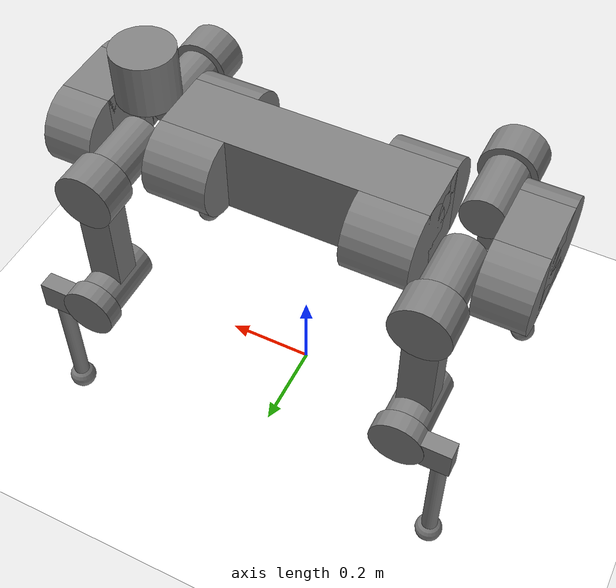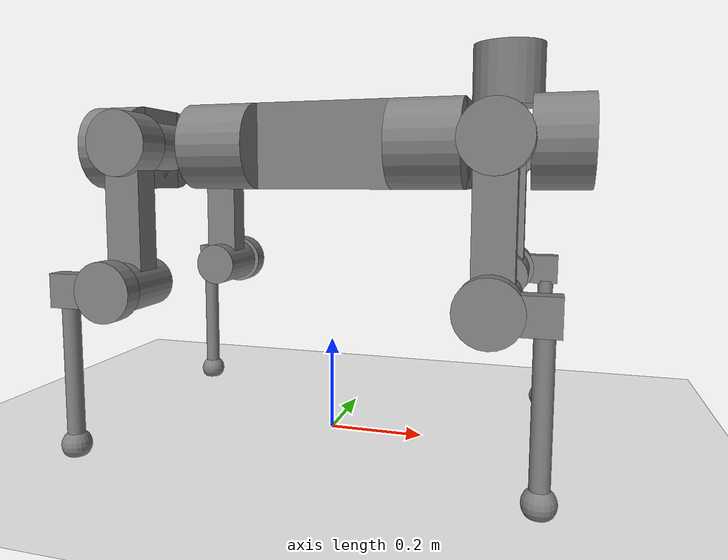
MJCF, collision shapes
<mujoco model="velocity_anymal_c">
  <option timestep="0.005" iterations="10" ls_iterations="20" solver="Newton" integrator="implicitfast"/>
  <compiler angle="radian" meshdir="assets" texturedir="assets" autolimits="true"/>

  <default>
    <material specular="0" shininess="0.25"/>
    <default class="anymal_c">
      <position kp="100" ctrlrange="-6.28 6.28" forcerange="-80 80"/>
      <joint damping="1" frictionloss="0.1"/>

      <default class="visual">
        <geom type="mesh" contype="0" conaffinity="0" group="2"/>
        <default class="visual_zflip">
          <geom quat="0 0 0 1"/>
        </default>
      </default>
      <default class="collision">
        <geom group="1" type="cylinder" contype="0" conaffinity="0"/>
        <default class="foot_collision">
          <geom type="sphere" size="0.03" pos="0 0 0.02325" priority="1" friction="0.6" conaffinity="1" contype="1"/>
        </default>
      </default>
    </default>

  </default>

  <worldbody>
    <geom name="floor" size="0 0 0.01" type="plane" material="groundplane" contype="1" conaffinity="1" priority="1" friction="0.6" condim="3"/>

    <body name="base" pos="0 0 0.62" quat="0 0 0 1" childclass="anymal_c">
      <freejoint name="root"/>
      <site name="imu" size="0.01" pos="0 0 0"/>
      <inertial mass="19.2035" pos="0.0025 0 0.0502071" quat="0.5 0.5 0.5 0.5" diaginertia="0.639559 0.624031 0.217374"/>
      <geom mesh="base_0" material="green" class="visual"/>
      <geom mesh="base_1" material="yellow" class="visual"/>
      <geom mesh="base_2" material="red" class="visual"/>
      <geom mesh="base_3" material="black_plastic" class="visual"/>
      <geom mesh="base_4" material="lwl" class="visual"/>
      <geom mesh="base_5" material="base" class="visual"/>
      <geom class="collision" size="0.29 0.07 0.09" type="box"/>
      <geom class="collision" size="0.09 0.0725" pos="0.2175 0.07 0" quat="1 0 1 0"/>
      <geom class="collision" size="0.09 0.0725" pos="-0.2175 0.07 0" quat="1 0 1 0"/>
      <geom class="collision" size="0.09 0.0725" pos="0.2175 -0.07 0" quat="1 0 1 0"/>
      <geom class="collision" size="0.09 0.0725" pos="-0.2175 -0.07 0" quat="1 0 1 0"/>
      <geom material="top_shell" mesh="top_shell" class="visual"/>
      <geom material="bottom_shell" mesh="bottom_shell" class="visual"/>
      <geom material="remote" mesh="remote" class="visual"/>
      <geom material="handle" mesh="handle" class="visual"/>
      <geom pos="0.4145 0 0" material="face" mesh="face" class="visual"/>
      <geom class="collision" size="0.055 0.07 0.09" pos="0.4695 0 0" type="box"/>
      <geom class="collision" size="0.09 0.055" pos="0.4695 0.07 0" quat="1 0 1 0"/>
      <geom class="collision" size="0.09 0.055" pos="0.4695 -0.07 0" quat="1 0 1 0"/>
      <geom pos="0.46165 0 -0.0292" quat="0.965926 0 0.258819 0" material="depth_camera" mesh="depth_camera"
        class="visual"/>
      <geom pos="0.513 0 0.01497" material="wide_angle_camera" mesh="wide_angle_camera" class="visual"/>
      <geom pos="-0.4145 0 0" material="face" mesh="face" class="visual_zflip"/>
      <geom class="collision" size="0.055 0.07 0.09" pos="-0.4695 0 0" quat="0 0 0 1" type="box"/>
      <geom class="collision" size="0.09 0.055" pos="-0.4695 -0.07 0" quat="0 -1 0 1"/>
      <geom class="collision" size="0.09 0.055" pos="-0.4695 0.07 0" quat="0 -1 0 1"/>
      <geom pos="-0.46165 0 -0.0292" quat="0 -0.258819 0 0.965926" material="depth_camera" mesh="depth_camera"
        class="visual"/>
      <geom pos="-0.513 0 0.01497" material="wide_angle_camera" mesh="wide_angle_camera" class="visual_zflip"/>
      <geom material="battery" mesh="battery" class="visual"/>
      <geom pos="0 0.07646 0.02905" quat="0.683013 -0.183013 0.183013 0.683013" material="depth_camera"
        mesh="depth_camera" class="visual"/>
      <geom pos="0 -0.07646 0.02905" quat="0.683013 0.183013 0.183013 -0.683013" material="depth_camera"
        mesh="depth_camera" class="visual"/>
      <geom pos="-0.364 0 0.0735" material="lidar_cage" mesh="lidar_cage" class="visual"/>
      <geom class="collision" size="0.07 0.06" pos="-0.364 0 0.1335"/>
      <geom pos="-0.364 0 0.1422" quat="1 0 0 -1" material="lidar" mesh="lidar" class="visual"/>
      <geom pos="0.2999 0.104 0" quat="0.258819 0.965926 0 0" material="drive" mesh="drive" class="visual"/>
      <geom pos="0.2999 -0.104 0" quat="0.258819 -0.965926 0 0" material="drive" mesh="drive" class="visual"/>
      <geom pos="-0.2999 0.104 0" quat="0 0 0.965926 -0.258819" material="drive" mesh="drive" class="visual"/>
      <geom pos="-0.2999 -0.104 0" quat="0 0 -0.965926 -0.258819" material="drive" mesh="drive" class="visual"/>
      <geom pos="0.116 0 0.073" material="hatch" mesh="hatch" class="visual"/>
      <body name="LF_HIP" pos="0.2999 0.104 0" quat="0.258819 0.965926 0 0">
        <inertial mass="2.781" pos="0.0566606 -0.015294 -0.00829784" quat="-0.127978 0.709783 -0.135278 0.679359"
          diaginertia="0.00585729 0.00491868 0.00329081"/>
        <joint name="LF_HAA" axis="1 0 0" range="-0.72 0.49"/>
        <geom quat="0.258819 -0.965926 0 0" material="hip_l" mesh="hip_l" class="visual"/>
        <geom pos="0.0599 -0.0725816 -0.041905" quat="0.183013 -0.683013 0.683013 0.183013" material="drive"
          mesh="drive" class="visual"/>
        <geom class="collision" size="0.05 0.07" pos="0.0599 -0.0119598 -0.006905"
          quat="-0.353553 -0.612372 0.612372 -0.353553"/>
        <body name="LF_THIGH" pos="0.0599 -0.0725816 -0.041905" quat="0.183013 -0.683013 0.683013 0.183013">
          <inertial mass="3.071" pos="0.0308147 4.64995e-05 -0.245696" quat="0.993166 -0.00515309 -0.0806592 0.0841972"
            diaginertia="0.03025 0.0298943 0.00418465"/>
          <joint name="LF_HFE" axis="1 0 0" range="-9.42478 9.42478"/>
          <geom quat="1 0 0 -1" material="thigh" mesh="thigh" class="visual"/>
          <geom class="collision" size="0.065 0.04" pos="0.04 0 0" quat="0.5 0.5 -0.5 -0.5"/>
          <geom class="collision" size="0.0375 0.03 0.141314" pos="0.03 0 -0.141314" quat="1 0 0 -1" type="box"/>
          <geom pos="0.1003 0 -0.285" material="drive" mesh="drive" class="visual"/>
          <geom class="collision" size="0.05 0.07" pos="0.0303 0 -0.285" quat="1 0 1 0"/>
          <body name="LF_SHANK" pos="0.1003 0 -0.285">
            <inertial mass="0.58842" pos="0.005462 -0.0612528 -0.0806598"
              quat="0.992934 -0.115904 -0.00105487 -0.0254421" diaginertia="0.0101637 0.00923838 0.00111927"/>
            <joint name="LF_KFE" axis="1 0 0" range="-9.42478 9.42478"/>
            <geom quat="1 0 0 -1" material="shank_l" mesh="shank_l" class="visual"/>
            <geom class="collision" size="0.06 0.02" pos="0.02 0 0" quat="0.5 0.5 -0.5 -0.5"/>
            <geom class="collision" size="0.057499 0.03375 0.019" pos="0.02 -0.057499 0" quat="0.5 0.5 -0.5 -0.5"
              type="box"/>
            <geom pos="0.01305 -0.08795 -0.33797" quat="0.382683 0 0 -0.92388" material="foot" mesh="foot"
              class="visual"/>
            <geom class="collision" size="0.0175 0.141252" pos="0.01305 -0.08795 -0.168985" quat="1 0 0 -1"/>
            <geom name="LF_FOOT" class="foot_collision" pos="0.01305 -0.08795 -0.31547" quat="1 0 0 -1"/>
            <site name="LF_foot" pos="0.01305 -0.08795 -0.31547" size="0.01"/>
          </body>
        </body>
      </body>
      <body name="RF_HIP" pos="0.2999 -0.104 0" quat="0.258819 -0.965926 0 0">
        <inertial mass="2.781" pos="0.0567633 0.015294 -0.00829784" quat="0.13524 0.679072 0.127985 0.710065"
          diaginertia="0.00585928 0.0049205 0.00329064"/>
        <joint name="RF_HAA" axis="1 0 0" range="-0.49 0.72"/>
        <geom quat="0.258819 0.965926 0 0" material="hip_r" mesh="hip_r" class="visual"/>
        <geom pos="0.0599 0.0725816 -0.041905" quat="0.183013 0.683013 0.683013 -0.183013" material="drive" mesh="drive"
          class="visual"/>
        <geom class="collision" size="0.05 0.07" pos="0.0599 0.0119598 -0.006905"
          quat="-0.353553 0.612372 0.612372 0.353553"/>
        <body name="RF_THIGH" pos="0.0599 0.0725816 -0.041905" quat="0.183013 0.683013 0.683013 -0.183013">
          <inertial mass="3.071" pos="0.0308147 4.64995e-05 -0.245696" quat="0.992775 -0.00512735 -0.0806685 0.0886811"
            diaginertia="0.0302511 0.0298933 0.0041845"/>
          <joint name="RF_HFE" axis="-1 0 0" range="-9.42478 9.42478"/>
          <geom quat="1 0 0 -1" material="thigh" mesh="thigh" class="visual"/>
          <geom class="collision" size="0.065 0.04" pos="0.04 0 0" quat="0.5 0.5 0.5 0.5"/>
          <geom class="collision" size="0.0375 0.03 0.141314" pos="0.03 0 -0.141314" quat="1 0 0 1" type="box"/>
          <geom pos="0.1003 0 -0.285" material="drive" mesh="drive" class="visual"/>
          <geom class="collision" size="0.05 0.07" pos="0.0303 0 -0.285" quat="1 0 1 0"/>
          <body name="RF_SHANK" pos="0.1003 0 -0.285">
            <inertial mass="0.58842" pos="0.005462 0.0612528 -0.0806598" quat="0.992934 0.115904 -0.00105487 0.0254421"
              diaginertia="0.0101637 0.00923838 0.00111927"/>
            <joint name="RF_KFE" axis="-1 0 0" range="-9.42478 9.42478"/>
            <geom quat="1 0 0 1" material="shank" mesh="shank_r" class="visual"/>
            <geom class="collision" size="0.06 0.02" pos="0.02 0 0" quat="0.5 0.5 0.5 0.5"/>
            <geom class="collision" size="0.057499 0.03375 0.019" pos="0.02 0.057499 0" quat="0.5 0.5 0.5 0.5"
              type="box"/>
            <geom pos="0.01305 0.08795 -0.33797" quat="0.382683 0 0 0.92388" material="foot" mesh="foot" class="visual"/>
            <geom class="collision" size="0.0175 0.141252" pos="0.01305 0.08795 -0.168985" quat="1 0 0 1"/>
            <geom name="RF_FOOT" class="foot_collision" pos="0.01305 0.08795 -0.31547" quat="1 0 0 1"/>
            <site name="RF_foot" pos="0.01305 0.08795 -0.31547" size="0.01"/>
          </body>
        </body>
      </body>
      <body name="LH_HIP" pos="-0.2999 0.104 0" quat="0 0 0.965926 -0.258819">
        <inertial mass="2.781" pos="0.0567633 0.015294 -0.00829784" quat="0.13524 0.679072 0.127985 0.710065"
          diaginertia="0.00585928 0.0049205 0.00329064"/>
        <joint name="LH_HAA" axis="-1 0 0" range="-0.72 0.49"/>
        <geom quat="-0.258819 -0.965926 0 0" material="hip_r" mesh="hip_r" class="visual"/>
        <geom pos="0.0599 0.0725816 -0.041905" quat="0.183013 0.683013 0.683013 -0.183013" material="drive" mesh="drive"
          class="visual"/>
        <geom class="collision" size="0.05 0.07" pos="0.0599 0.0119598 -0.006905"
          quat="-0.353553 0.612372 0.612372 0.353553"/>
        <body name="LH_THIGH" pos="0.0599 0.0725816 -0.041905" quat="0.183013 0.683013 0.683013 -0.183013">
          <inertial mass="3.071" pos="0.0308147 4.64995e-05 -0.245696" quat="0.992775 -0.00512735 -0.0806685 0.0886811"
            diaginertia="0.0302511 0.0298933 0.0041845"/>
          <joint name="LH_HFE" axis="1 0 0" range="-9.42478 9.42478"/>
          <geom quat="1 0 0 -1" material="thigh" mesh="thigh" class="visual"/>
          <geom class="collision" size="0.065 0.04" pos="0.04 0 0" quat="0.5 0.5 -0.5 -0.5"/>
          <geom class="collision" size="0.0375 0.03 0.141314" pos="0.03 0 -0.141314" quat="1 0 0 -1" type="box"/>
          <geom pos="0.1003 0 -0.285" material="drive" mesh="drive" class="visual"/>
          <geom class="collision" size="0.05 0.07" pos="0.0303 0 -0.285" quat="1 0 1 0"/>
          <body name="LH_SHANK" pos="0.1003 0 -0.285">
            <inertial mass="0.58842" pos="0.005462 0.0612528 -0.0806598" quat="0.992934 0.115904 -0.00105487 0.0254421"
              diaginertia="0.0101637 0.00923838 0.00111927"/>
            <joint name="LH_KFE" axis="1 0 0" range="-9.42478 9.42478"/>
            <geom quat="-1 0 0 -1" material="shank" mesh="shank_r" class="visual"/>
            <geom class="collision" size="0.06 0.02" pos="0.02 0 0" quat="0.5 0.5 -0.5 -0.5"/>
            <geom class="collision" size="0.057499 0.03375 0.019" pos="0.02 0.057499 0" quat="0.5 0.5 -0.5 -0.5"
              type="box"/>
            <geom pos="0.01305 0.08795 -0.33797" quat="-0.382683 0 0 -0.92388" material="foot" mesh="foot"
              class="visual"/>
            <geom class="collision" size="0.0175 0.141252" pos="0.01305 0.08795 -0.168985" quat="1 0 0 -1"/>
            <geom name="LH_FOOT" class="foot_collision" pos="0.01305 0.08795 -0.31547" quat="1 0 0 -1"/>
            <site name="LH_foot" pos="0.01305 0.08795 -0.31547" size="0.01"/>
          </body>
        </body>
      </body>
      <body name="RH_HIP" pos="-0.2999 -0.104 0" quat="0 0 -0.965926 -0.258819">
        <inertial mass="2.781" pos="0.0566606 -0.015294 -0.00829784" quat="-0.127978 0.709783 -0.135278 0.679359"
          diaginertia="0.00585729 0.00491868 0.00329081"/>
        <joint name="RH_HAA" axis="-1 0 0" range="-0.49 0.72"/>
        <geom quat="-0.258819 0.965926 0 0" material="hip_l" mesh="hip_l" class="visual"/>
        <geom pos="0.0599 -0.0725816 -0.041905" quat="-0.183013 0.683013 -0.683013 -0.183013" material="drive"
          mesh="drive" class="visual"/>
        <geom class="collision" size="0.05 0.07" pos="0.0599 -0.0119598 -0.006905"
          quat="0.353553 0.612372 -0.612372 0.353553"/>
        <body name="RH_THIGH" pos="0.0599 -0.0725816 -0.041905" quat="-0.183013 0.683013 -0.683013 -0.183013">
          <inertial mass="3.071" pos="0.0308147 4.64995e-05 -0.245696" quat="0.993166 -0.00515309 -0.0806592 0.0841972"
            diaginertia="0.03025 0.0298943 0.00418465"/>
          <joint name="RH_HFE" axis="-1 0 0" range="-9.42478 9.42478"/>
          <geom quat="1 0 0 -1" material="thigh" mesh="thigh" class="visual"/>
          <geom class="collision" size="0.065 0.04" pos="0.04 0 0" quat="0.5 0.5 0.5 0.5"/>
          <geom class="collision" size="0.0375 0.03 0.141314" pos="0.03 0 -0.141314" quat="1 0 0 1" type="box"/>
          <geom pos="0.1003 0 -0.285" material="drive" mesh="drive" class="visual"/>
          <geom class="collision" size="0.05 0.07" pos="0.0303 0 -0.285" quat="1 0 1 0"/>
          <body name="RH_SHANK" pos="0.1003 0 -0.285">
            <inertial mass="0.58842" pos="0.005462 -0.0612528 -0.0806598"
              quat="0.992934 -0.115904 -0.00105487 -0.0254421" diaginertia="0.0101637 0.00923838 0.00111927"/>
            <joint name="RH_KFE" axis="-1 0 0" range="-9.42478 9.42478"/>
            <geom quat="1 0 0 -1" material="shank_l" mesh="shank_l" class="visual"/>
            <geom class="collision" size="0.06 0.02" pos="0.02 0 0" quat="0.5 0.5 0.5 0.5"/>
            <geom class="collision" size="0.057499 0.03375 0.019" pos="0.02 -0.057499 0" quat="0.5 0.5 0.5 0.5" type="box"/>
            <geom pos="0.01305 -0.08795 -0.33797" quat="0.382683 0 0 -0.92388" material="foot" mesh="foot"
              class="visual"/>
            <geom class="collision" size="0.0175 0.141252" pos="0.01305 -0.08795 -0.168985" quat="1 0 0 1"/>
            <geom name="RH_FOOT" class="foot_collision" pos="0.01305 -0.08795 -0.31547" quat="1 0 0 1"/>
            <site name="RH_foot" pos="0.01305 -0.08795 -0.31547" size="0.01"/>
          </body>
        </body>
      </body>
    </body>
  </worldbody>

  <contact>
    <exclude body1="base" body2="LF_THIGH"/>
    <exclude body1="base" body2="RF_THIGH"/>
    <exclude body1="base" body2="LH_THIGH"/>
    <exclude body1="base" body2="RH_THIGH"/>
  </contact>

  <actuator>
    <position class="anymal_c" joint="LF_HAA" name="LF_HAA"/>
    <position class="anymal_c" joint="LF_HFE" name="LF_HFE"/>
    <position class="anymal_c" joint="LF_KFE" name="LF_KFE"/>
    <position class="anymal_c" joint="RF_HAA" name="RF_HAA"/>
    <position class="anymal_c" joint="RF_HFE" name="RF_HFE"/>
    <position class="anymal_c" joint="RF_KFE" name="RF_KFE"/>
    <position class="anymal_c" joint="LH_HAA" name="LH_HAA"/>
    <position class="anymal_c" joint="LH_HFE" name="LH_HFE"/>
    <position class="anymal_c" joint="LH_KFE" name="LH_KFE"/>
    <position class="anymal_c" joint="RH_HAA" name="RH_HAA"/>
    <position class="anymal_c" joint="RH_HFE" name="RH_HFE"/>
    <position class="anymal_c" joint="RH_KFE" name="RH_KFE"/>
  </actuator>

  <sensor>
    <gyro name="gyro" site="imu" noise="0.01"/>
    <accelerometer name="accelerometer" site="imu" noise="0.01"/>
    <velocimeter name="local_linvel" site="imu"/>
    <framezaxis name="gravity" objtype="site" objname="imu"/>
    <framelinvel name="global_linvel" objtype="site" objname="imu"/>
    <frameangvel name="global_angvel" objtype="site" objname="imu"/>

    <contact name="LF_foot_floor_contact" geom1="LF_FOOT" geom2="floor" reduce="mindist" num="1" data="found"/>
    <contact name="RF_foot_floor_contact" geom1="RF_FOOT" geom2="floor" reduce="mindist" num="1" data="found"/>
    <contact name="LH_foot_floor_contact" geom1="LH_FOOT" geom2="floor" reduce="mindist" num="1" data="found"/>
    <contact name="RH_foot_floor_contact" geom1="RH_FOOT" geom2="floor" reduce="mindist" num="1" data="found"/>

    <framelinvel name="LF_foot_global_linvel" objtype="site" objname="LF_foot"/>
    <framelinvel name="RF_foot_global_linvel" objtype="site" objname="RF_foot"/>
    <framelinvel name="LH_foot_global_linvel" objtype="site" objname="LH_foot"/>
    <framelinvel name="RH_foot_global_linvel" objtype="site" objname="RH_foot"/>
    <subtreeangmom name="root_angmom" body="base"/>
  </sensor>

  <keyframe>
    <key name="home"
      qpos="
       0.0 0.0 0.56 1.0 0.0 0.0 0.0
       0.0 0.5235987755982988 -0.7853981 0.0 0.5235987755982988 -0.7853981 0.0 -0.5235987755982988 0.7853981 0.0 -0.5235987755982988 0.7853981"/>
  </keyframe>

  <asset>
    <material name="black_plastic" rgba="0.007 0.007 0.007 1"/>
    <material name="green" rgba="0.052 0.178 0.033 1"/>
    <material name="red" rgba="0.178 0.006 0.005 1"/>
    <material name="yellow" rgba="0.178 0.119 0.006 1"/>
    <material name="lwl" rgba="0.8 0.8 0.8 1"/>
    <material name="base" texture="base"/>
    <material name="top_shell" texture="top_shell"/>
    <material name="bottom_shell" texture="bottom_shell"/>
    <material name="hip_l" texture="hip_l"/>
    <material name="thigh" texture="thigh"/>
    <material name="shank_l" texture="shank_l"/>
    <material name="foot" texture="foot"/>
    <material name="hip_r" texture="hip_r"/>
    <material name="shank" texture="shank_r"/>
    <material name="hatch" texture="hatch"/>
    <material name="remote" texture="remote"/>
    <material name="handle" texture="handle"/>
    <material name="face" texture="face"/>
    <material name="depth_camera" texture="depth_camera"/>
    <material name="wide_angle_camera" texture="wide_angle_camera"/>
    <material name="battery" texture="battery"/>
    <material name="lidar_cage" texture="lidar_cage"/>
    <material name="lidar" texture="lidar"/>
    <material name="drive" texture="drive"/>

    <texture type="2d" name="base" file="base.png"/>
    <texture type="2d" name="top_shell" file="top_shell.png"/>
    <texture type="2d" name="bottom_shell" file="bottom_shell.png"/>
    <texture type="2d" name="remote" file="remote.png"/>
    <texture type="2d" name="hatch" file="hatch.png"/>
    <texture type="2d" name="handle" file="handle.png"/>
    <texture type="2d" name="face" file="face.png"/>
    <texture type="2d" name="battery" file="battery.png"/>
    <texture type="2d" name="lidar_cage" file="lidar_cage.png"/>
    <texture type="2d" name="depth_camera" file="depth_camera.png"/>
    <texture type="2d" name="wide_angle_camera" file="wide_angle_camera.png"/>
    <texture type="2d" name="lidar" file="lidar.png"/>
    <texture type="2d" name="drive" file="drive.png"/>
    <texture type="2d" name="hip_l" file="hip_l.png"/>
    <texture type="2d" name="shank_l" file="shank_l.png"/>
    <texture type="2d" name="foot" file="foot.png"/>
    <texture type="2d" name="thigh" file="thigh.png"/>
    <texture type="2d" name="shank_r" file="shank_r.png"/>
    <texture type="2d" name="hip_r" file="hip_r.png"/>

    <mesh file="base_0.obj"/>
    <mesh file="base_1.obj"/>
    <mesh file="base_2.obj"/>
    <mesh file="base_3.obj"/>
    <mesh file="base_4.obj"/>
    <mesh file="base_5.obj"/>
    <mesh file="top_shell.obj"/>
    <mesh file="bottom_shell.obj"/>
    <mesh file="remote.obj"/>
    <mesh file="handle.obj"/>
    <mesh file="face.obj"/>
    <mesh file="wide_angle_camera.obj"/>
    <mesh file="depth_camera.obj"/>
    <mesh file="battery.obj"/>
    <mesh file="lidar_cage.obj"/>
    <mesh file="lidar.obj"/>
    <mesh file="drive.obj"/>
    <mesh file="hip_l.obj"/>
    <mesh file="thigh.obj"/>
    <mesh file="shank_l.obj"/>
    <mesh file="foot.obj"/>
    <mesh file="hip_r.obj"/>
    <mesh file="hatch.obj"/>
    <mesh file="shank_r.obj"/>

    <texture type="skybox" builtin="gradient" rgb1="1 1 1" rgb2="1 1 1" width="800" height="800"/>
    <texture type="2d" name="groundplane" builtin="checker" mark="edge" rgb1="1 1 1" rgb2="1 1 1" markrgb="0 0 0" width="300" height="300"/>
    <material name="groundplane" texture="groundplane" texuniform="true" texrepeat="5 5" reflectance="0"/>
  </asset>
</mujoco>
